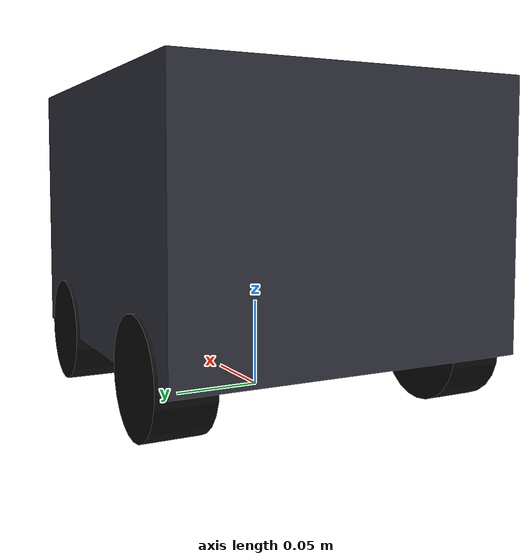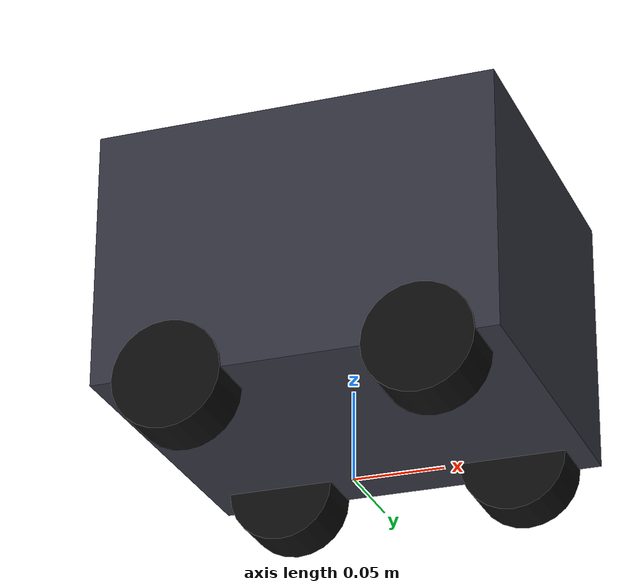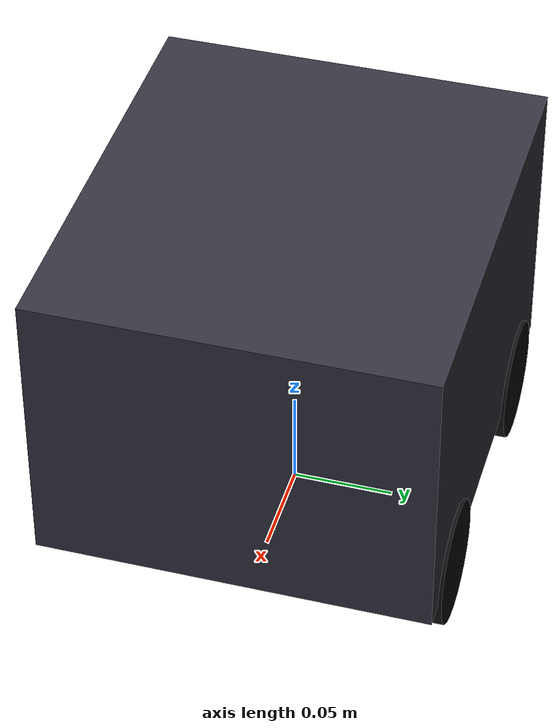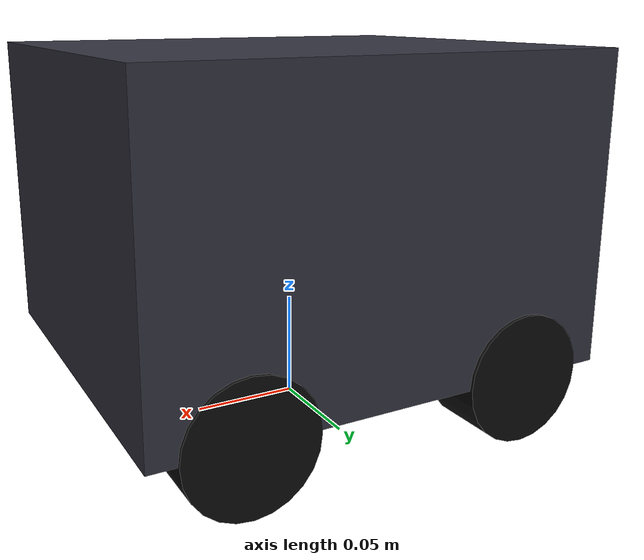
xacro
<?xml version="1.0"?>
<robot xmlns:xacro="http://www.ros.org/wiki/xacro" name="smartcar">

  <!-- ===== 可覆盖参数（launch 通过 xacro 命令行传入） ===== -->
  <xacro:arg name="use_mock_hardware" default="true"/>
  <xacro:arg name="serial_port" default="/dev/ttyUSB0"/>
  <xacro:arg name="baud_rate" default="115200"/>

  <!-- ===== 几何常量（单位 m，2026-07-22 从 smartcar_description 同步）===== -->
  <xacro:property name="wheel_radius" value="0.03"/>   <!-- 麦轮 Ø60mm → r=0.03 -->
  <xacro:property name="wheel_width" value="0.03062"/> <!-- 轮厚 30.62 mm -->
  <xacro:property name="wheelbase" value="0.135"/>     <!-- 前后轴距 135 mm (CAD 精确轴距) -->
  <xacro:property name="track_width" value="0.16462"/> <!-- 左右轮距 164.62 mm (CAD 精确轮距) -->
  <xacro:property name="base_length" value="0.220"/>
  <xacro:property name="base_width" value="0.192"/>
  <xacro:property name="base_height" value="0.145"/>
  <xacro:property name="base_mass" value="2.0"/>
  <xacro:property name="wheel_mass" value="0.15"/>

  <!-- ===== 引入 ros2_control 硬件描述 ===== -->
  <xacro:include filename="$(find smartcar_bringup)/urdf/smartcar.ros2_control.xacro"/>

  <!-- ================= 底盘 ================= -->
  <!-- base_footprint：地面投影根坐标系，里程计的父系惯例落脚点 -->
  <link name="base_footprint"/>

  <link name="base_link">
    <visual>
      <origin xyz="0 0 0" rpy="0 0 0"/>
      <geometry>
        <box size="${base_length} ${base_width} ${base_height}"/>
      </geometry>
      <material name="chassis_gray">
        <color rgba="0.2 0.2 0.25 1.0"/>
      </material>
    </visual>
    <collision>
      <geometry>
        <box size="${base_length} ${base_width} ${base_height}"/>
      </geometry>
    </collision>
    <inertial>
      <mass value="${base_mass}"/>
      <!-- 长方体惯量：I = m/12 * (a^2 + b^2) -->
      <inertia
        ixx="${base_mass/12.0*(base_width*base_width + base_height*base_height)}"
        iyy="${base_mass/12.0*(base_length*base_length + base_height*base_height)}"
        izz="${base_mass/12.0*(base_length*base_length + base_width*base_width)}"
        ixy="0" ixz="0" iyz="0"/>
    </inertial>
  </link>

  <joint name="base_footprint_joint" type="fixed">
    <parent link="base_footprint"/>
    <child link="base_link"/>
    <!-- 底盘几何中心离地高度 = 轮半径 + 底盘高度/2。
         这样底盘底面恰好位于轮子中心高度（z=wheel_radius），
         轮子从底盘底面伸出接触地面，而不会埋在地下或浮在半空。 -->
    <origin xyz="0 0 ${base_height/2 + wheel_radius}" rpy="0 0 0"/>
  </joint>

  <!-- ================= 轮子宏 ================= -->
  <!-- x_sign/y_sign: 前(+)/后(-)，左(+)/右(-)。轮绕 y 轴旋转（axis 0 1 0）。-->
  <xacro:macro name="wheel" params="prefix x_sign y_sign">
    <link name="${prefix}_wheel_link">
      <visual>
        <origin xyz="0 0 0" rpy="${pi/2} 0 0"/>
        <geometry>
          <cylinder radius="${wheel_radius}" length="${wheel_width}"/>
        </geometry>
        <material name="wheel_black">
          <color rgba="0.05 0.05 0.05 1.0"/>
        </material>
      </visual>
      <collision>
        <origin xyz="0 0 0" rpy="${pi/2} 0 0"/>
        <geometry>
          <cylinder radius="${wheel_radius}" length="${wheel_width}"/>
        </geometry>
      </collision>
      <inertial>
        <mass value="${wheel_mass}"/>
        <!-- 圆柱绕自转轴 izz = m*r^2/2；径向 = m/12*(3r^2 + h^2) -->
        <inertia
          ixx="${wheel_mass/12.0*(3*wheel_radius*wheel_radius + wheel_width*wheel_width)}"
          iyy="${wheel_mass/12.0*(3*wheel_radius*wheel_radius + wheel_width*wheel_width)}"
          izz="${wheel_mass*wheel_radius*wheel_radius/2.0}"
          ixy="0" ixz="0" iyz="0"/>
      </inertial>
    </link>

    <joint name="${prefix}_wheel_joint" type="continuous">
      <parent link="base_link"/>
      <child link="${prefix}_wheel_link"/>
      <!-- 轮关节 Z = -base_height/2，使轮子中心位于底盘底面（base_link
           原点是底盘几何中心，向下偏移半个底盘高度即到底面）。
           配合 base_footprint_joint 的 Z 偏移，轮子底部恰好着地。 -->
      <origin xyz="${x_sign*wheelbase/2.0} ${y_sign*track_width/2.0} ${-base_height/2}"
              rpy="0 0 0"/>
      <axis xyz="0 1 0"/>
    </joint>
  </xacro:macro>

  <!-- 四个轮子：命名与关节名严格对应全局约束 -->
  <xacro:wheel prefix="front_left"  x_sign="1"  y_sign="1"/>
  <xacro:wheel prefix="front_right" x_sign="1"  y_sign="-1"/>
  <xacro:wheel prefix="rear_left"   x_sign="-1" y_sign="1"/>
  <xacro:wheel prefix="rear_right"  x_sign="-1" y_sign="-1"/>

  <!-- ================= 挂载 ros2_control ================= -->
  <xacro:smartcar_ros2_control
      name="smartcar_system"
      use_mock_hardware="$(arg use_mock_hardware)"
      serial_port="$(arg serial_port)"
      baud_rate="$(arg baud_rate)"
      wheel_radius="${wheel_radius}"/>

</robot>
